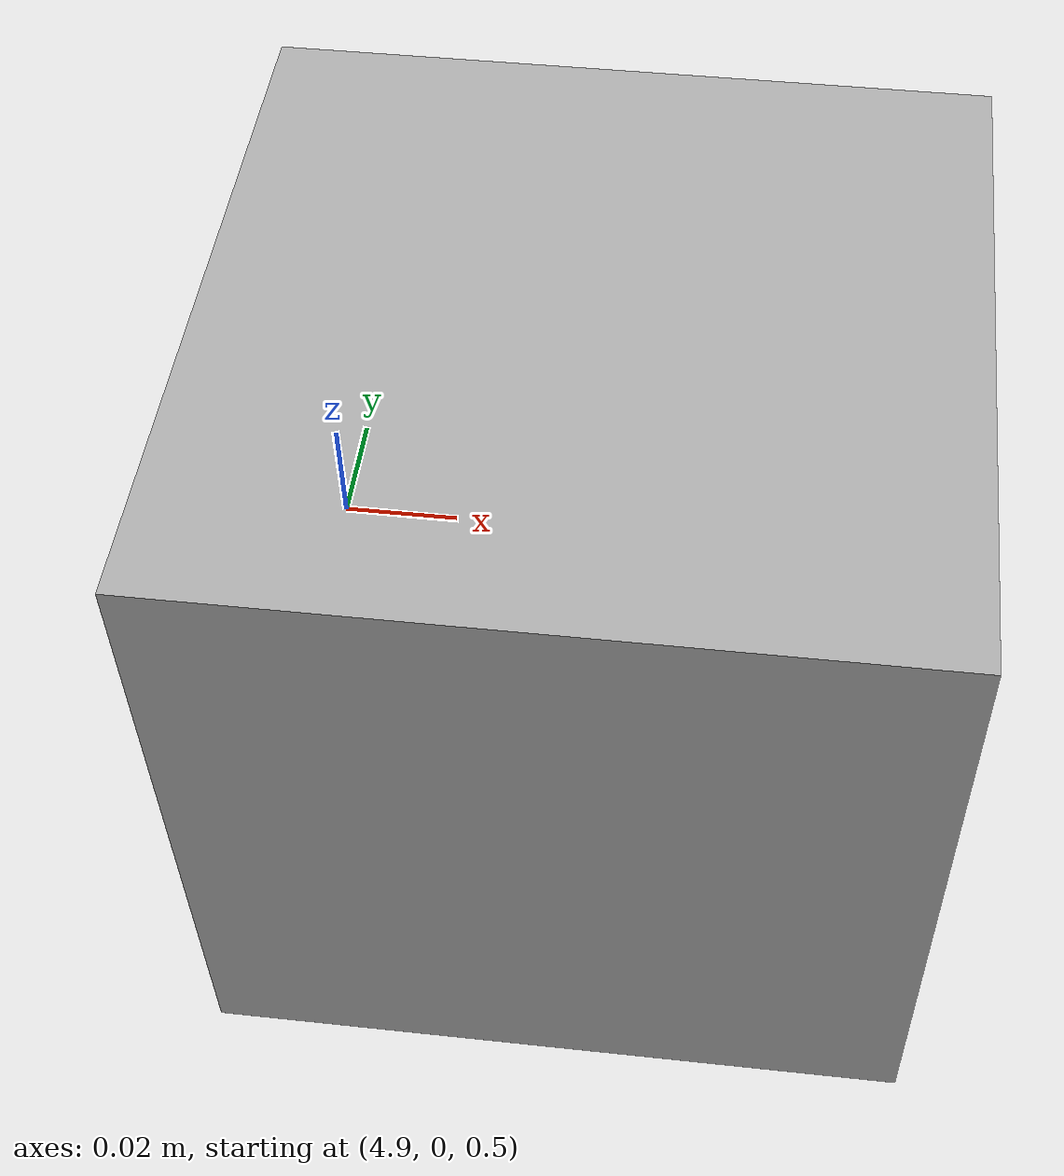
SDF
<sdf version='1.10'>
  <world name='empty'>
    <physics name='1ms' type='ignored'>
      <max_step_size>0.001</max_step_size>
      <real_time_factor>1</real_time_factor>
      <real_time_update_rate>1000</real_time_update_rate>
    </physics>
    <plugin name='gz::sim::systems::Physics' filename='gz-sim-physics-system'/>
    <plugin name='gz::sim::systems::UserCommands' filename='gz-sim-user-commands-system'/>
    <plugin name='gz::sim::systems::SceneBroadcaster' filename='gz-sim-scene-broadcaster-system'/>
    <plugin name='gz::sim::systems::Contact' filename='gz-sim-contact-system'/>
    <gravity>0 0 -9.8000000000000007</gravity>
    <magnetic_field>5.5644999999999998e-06 2.2875799999999999e-05 -4.2388400000000002e-05</magnetic_field>
    <atmosphere type='adiabatic'/>
    <scene>
      <ambient>0.400000006 0.400000006 0.400000006 1</ambient>
      <background>0.699999988 0.699999988 0.699999988 1</background>
      <shadows>true</shadows>
    </scene>
    <plugin name='gz::sim::systems::Sensors' filename='gz-sim-sensors-system'>
      <render_engine>ogre2</render_engine>
    </plugin>
    <plugin name='gz::sim::systems::SceneBroadcaster' filename='gz-sim-scene-broadcaster-system'/>
    <model name='ground_plane'>
      <static>true</static>
      <link name='link'>
        <collision name='collision'>
          <geometry>
            <plane>
              <normal>0 0 1</normal>
              <size>100 100</size>
            </plane>
          </geometry>
          <surface>
            <friction>
              <ode/>
            </friction>
            <bounce/>
            <contact/>
          </surface>
        </collision>
        <visual name='visual'>
          <geometry>
            <plane>
              <normal>0 0 1</normal>
              <size>100 100</size>
            </plane>
          </geometry>
          <material>
            <ambient>0.800000012 0.800000012 0.800000012 1</ambient>
            <diffuse>0.800000012 0.800000012 0.800000012 1</diffuse>
            <specular>0.800000012 0.800000012 0.800000012 1</specular>
          </material>
        </visual>
        <pose>0 0 0 0 0 0</pose>
        <inertial>
          <pose>0 0 0 0 0 0</pose>
          <mass>1</mass>
          <inertia>
            <ixx>1</ixx>
            <ixy>0</ixy>
            <ixz>0</ixz>
            <iyy>1</iyy>
            <iyz>0</iyz>
            <izz>1</izz>
          </inertia>
        </inertial>
        <enable_wind>false</enable_wind>
      </link>
      <pose>0 0 0 0 0 0</pose>
      <self_collide>false</self_collide>
    </model>
    <model name='rgbd_camera'>
      <pose>5 -6.9388939039072284e-18 0.5 0 0 3.1400000000000001</pose>
      <link name='camera_link'>
        <pose>0.050000000000000003 0.050000000000000003 0.050000000000000003 0 0 0</pose>
        <inertial>
          <mass>0.10000000000000001</mass>
          <inertia>
            <ixx>0.00016666700000000001</ixx>
            <iyy>0.00016666700000000001</iyy>
            <izz>0.00016666700000000001</izz>
            <ixy>0</ixy>
            <ixz>0</ixz>
            <iyz>0</iyz>
          </inertia>
          <pose>0 0 0 0 0 0</pose>
        </inertial>
        <collision name='collision'>
          <geometry>
            <box>
              <size>0.10000000000000001 0.10000000000000001 0.10000000000000001</size>
            </box>
          </geometry>
          <surface>
            <friction>
              <ode/>
            </friction>
            <bounce/>
            <contact/>
          </surface>
        </collision>
        <visual name='visual'>
          <geometry>
            <box>
              <size>0.10000000000000001 0.10000000000000001 0.10000000000000001</size>
            </box>
          </geometry>
        </visual>
        <sensor name='rgbd_camera' type='rgbd_camera'>
          <camera>
            <horizontal_fov>1.0469999999999999</horizontal_fov>
            <image>
              <width>320</width>
              <height>240</height>
            </image>
            <clip>
              <near>0.10000000000000001</near>
              <far>100</far>
            </clip>
          </camera>
          <always_on>true</always_on>
          <update_rate>30</update_rate>
          <visualize>true</visualize>
          <topic>rgbd_camera</topic>
          <enable_metrics>true</enable_metrics>
        </sensor>
        <enable_wind>false</enable_wind>
      </link>
      <static>false</static>
      <self_collide>false</self_collide>
    </model>
    <light name='sun' type='directional'>
      <pose>0 0 10 0 0 0</pose>
      <cast_shadows>true</cast_shadows>
      <intensity>1</intensity>
      <direction>-0.5 0.10000000000000001 -0.90000000000000002</direction>
      <diffuse>0.800000012 0.800000012 0.800000012 1</diffuse>
      <specular>0.200000003 0.200000003 0.200000003 1</specular>
      <attenuation>
        <range>1000</range>
        <linear>0.01</linear>
        <constant>0.90000000000000002</constant>
        <quadratic>0.001</quadratic>
      </attenuation>
      <spot>
        <inner_angle>0</inner_angle>
        <outer_angle>0</outer_angle>
        <falloff>0</falloff>
      </spot>
    </light>
  </world>
</sdf>
